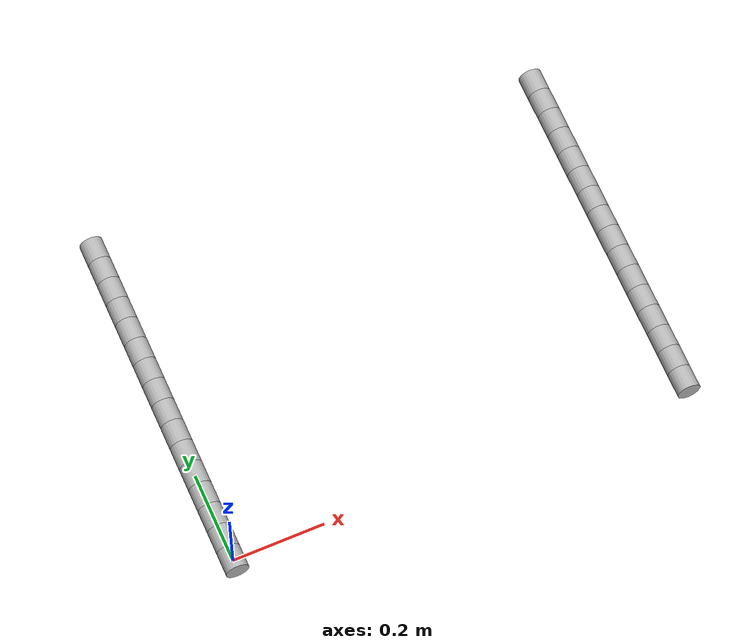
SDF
<sdf version="1.5">
 <world name="default">
  <include><uri>model://sun</uri></include>
  <model name="robot 2">
   <pose>1 0 0 1.57 -0 0</pose>
   <link name="base_link">
    <inertial>
     <pose>0 0 0.025 0 -0 0</pose>
     <mass>0.159</mass>
     <inertia>
      <ixx>5.7969e-05</ixx>
      <ixy>0</ixy>
      <ixz>0</ixz>
      <iyy>5.7969e-05</iyy>
      <iyz>0</iyz>
      <izz>4.9687e-05</izz>
     </inertia>
    </inertial>
    <collision name="base_link_collision">
     <geometry><cylinder><length>0.05</length><radius>0.025</radius></cylinder></geometry>
    </collision>
    <visual name="base_link_visual">
     <geometry><cylinder><length>0.05</length><radius>0.025</radius></cylinder></geometry>
    </visual>
   </link>
   <joint name="fixed" type="ball">
    <child>base_link</child>
    <parent>world</parent>
    <axis>
     <dynamics>
      <damping>0</damping>
      <friction>1</friction>
      <spring_reference>0</spring_reference>
      <spring_stiffness>0</spring_stiffness>
     </dynamics>
     <use_parent_model_frame>1</use_parent_model_frame>
     <xyz>0 0 1</xyz>
    </axis>
   </joint>
   <link name="link02">
    <pose>0 0 -0.025 0 -0 0</pose>
    <inertial>
     <pose>0 0 0.025 0 -0 0</pose>
     <mass>0.159</mass>
     <inertia>
      <ixx>5.7969e-05</ixx>
      <ixy>0</ixy>
      <ixz>0</ixz>
      <iyy>5.7969e-05</iyy>
      <iyz>0</iyz>
      <izz>4.9687e-05</izz>
     </inertia>
    </inertial>
    <collision name="link02_collision">
     <pose>0 0 -0.025 0 -0 0</pose>
     <geometry><cylinder><length>0.05</length><radius>0.025</radius></cylinder></geometry>
    </collision>
    <visual name="link02_visual">
     <pose>0 0 -0.025 0 -0 0</pose>
     <geometry><cylinder><length>0.05</length><radius>0.025</radius></cylinder></geometry>
    </visual>
   </link>
   <joint name="link0102" type="revolute">
    <child>link02</child>
    <parent>base_link</parent>
    <axis>
     <xyz>0 1 0</xyz>
     <limit><lower>-1.57075</lower><upper>1.57075</upper><effort>1000</effort><velocity>1</velocity></limit>
     <dynamics>
      <damping>0.5</damping>
      <friction>0.5</friction>
      <spring_reference>0</spring_reference>
      <spring_stiffness>5</spring_stiffness>
     </dynamics>
     <use_parent_model_frame>1</use_parent_model_frame>
    </axis>
   </joint>
   <link name="link03">
    <pose>0 0 -0.075 0 -0 0</pose>
    <inertial>
     <pose>0 0 0.025 0 -0 0</pose>
     <mass>0.159</mass>
     <inertia>
      <ixx>5.7969e-05</ixx>
      <ixy>0</ixy>
      <ixz>0</ixz>
      <iyy>5.7969e-05</iyy>
      <iyz>0</iyz>
      <izz>4.9687e-05</izz>
     </inertia>
    </inertial>
    <collision name="link03_collision">
     <pose>0 0 -0.025 0 -0 0</pose>
     <geometry><cylinder><length>0.05</length><radius>0.025</radius></cylinder></geometry>
    </collision>
    <visual name="link03_visual">
     <pose>0 0 -0.025 0 -0 0</pose>
     <geometry><cylinder><length>0.05</length><radius>0.025</radius></cylinder></geometry>
    </visual>
   </link>
   <joint name="link0203" type="revolute">
    <child>link03</child>
    <parent>link02</parent>
    <axis>
     <xyz>1 0 0</xyz>
     <limit><lower>-1.57075</lower><upper>1.57075</upper><effort>1000</effort><velocity>1</velocity></limit>
     <dynamics>
      <damping>0.5</damping>
      <friction>0.5</friction>
      <spring_reference>0</spring_reference>
      <spring_stiffness>5</spring_stiffness>
     </dynamics>
     <use_parent_model_frame>1</use_parent_model_frame>
    </axis>
   </joint>
   <link name="link04">
    <pose>0 0 -0.125 0 -0 0</pose>
    <inertial>
     <pose>0 0 0.025 0 -0 0</pose>
     <mass>0.159</mass>
     <inertia>
      <ixx>5.7969e-05</ixx>
      <ixy>0</ixy>
      <ixz>0</ixz>
      <iyy>5.7969e-05</iyy>
      <iyz>0</iyz>
      <izz>4.9687e-05</izz>
     </inertia>
    </inertial>
    <collision name="link04_collision">
     <pose>0 0 -0.025 0 -0 0</pose>
     <geometry><cylinder><length>0.05</length><radius>0.025</radius></cylinder></geometry>
    </collision>
    <visual name="link04_visual">
     <pose>0 0 -0.025 0 -0 0</pose>
     <geometry><cylinder><length>0.05</length><radius>0.025</radius></cylinder></geometry>
    </visual>
   </link>
   <joint name="link0304" type="revolute">
    <child>link04</child>
    <parent>link03</parent>
    <axis>
     <xyz>0 1 0</xyz>
     <limit><lower>-1.57075</lower><upper>1.57075</upper><effort>1000</effort><velocity>1</velocity></limit>
     <dynamics>
      <damping>0.5</damping>
      <friction>0.5</friction>
      <spring_reference>0</spring_reference>
      <spring_stiffness>5</spring_stiffness>
     </dynamics>
     <use_parent_model_frame>1</use_parent_model_frame>
    </axis>
   </joint>
   <link name="link05">
    <pose>0 0 -0.175 0 -0 0</pose>
    <inertial>
     <pose>0 0 0.025 0 -0 0</pose>
     <mass>0.159</mass>
     <inertia>
      <ixx>5.7969e-05</ixx>
      <ixy>0</ixy>
      <ixz>0</ixz>
      <iyy>5.7969e-05</iyy>
      <iyz>0</iyz>
      <izz>4.9687e-05</izz>
     </inertia>
    </inertial>
    <collision name="link05_collision">
     <pose>0 0 -0.025 0 -0 0</pose>
     <geometry><cylinder><length>0.05</length><radius>0.025</radius></cylinder></geometry>
    </collision>
    <visual name="link05_visual">
     <pose>0 0 -0.025 0 -0 0</pose>
     <geometry><cylinder><length>0.05</length><radius>0.025</radius></cylinder></geometry>
    </visual>
   </link>
   <joint name="link0405" type="revolute">
    <child>link05</child>
    <parent>link04</parent>
    <axis>
     <xyz>1 0 0</xyz>
     <limit><lower>-1.57075</lower><upper>1.57075</upper><effort>1000</effort><velocity>1</velocity></limit>
     <dynamics>
      <damping>0.5</damping>
      <friction>0.5</friction>
      <spring_reference>0</spring_reference>
      <spring_stiffness>5</spring_stiffness>
     </dynamics>
     <use_parent_model_frame>1</use_parent_model_frame>
    </axis>
   </joint>
   <link name="link06">
    <pose>0 0 -0.225 0 -0 0</pose>
    <inertial>
     <pose>0 0 0.025 0 -0 0</pose>
     <mass>0.159</mass>
     <inertia>
      <ixx>5.7969e-05</ixx>
      <ixy>0</ixy>
      <ixz>0</ixz>
      <iyy>5.7969e-05</iyy>
      <iyz>0</iyz>
      <izz>4.9687e-05</izz>
     </inertia>
    </inertial>
    <collision name="link06_collision">
     <pose>0 0 -0.025 0 -0 0</pose>
     <geometry><cylinder><length>0.05</length><radius>0.025</radius></cylinder></geometry>
    </collision>
    <visual name="link06_visual">
     <pose>0 0 -0.025 0 -0 0</pose>
     <geometry><cylinder><length>0.05</length><radius>0.025</radius></cylinder></geometry>
    </visual>
   </link>
   <joint name="link0506" type="revolute">
    <child>link06</child>
    <parent>link05</parent>
    <axis>
     <xyz>0 1 0</xyz>
     <limit><lower>-1.57075</lower><upper>1.57075</upper><effort>1000</effort><velocity>1</velocity></limit>
     <dynamics>
      <damping>0.5</damping>
      <friction>0.5</friction>
      <spring_reference>0</spring_reference>
      <spring_stiffness>5</spring_stiffness>
     </dynamics>
     <use_parent_model_frame>1</use_parent_model_frame>
    </axis>
   </joint>
   <link name="link07">
    <pose>0 0 -0.275 0 -0 0</pose>
    <inertial>
     <pose>0 0 0.025 0 -0 0</pose>
     <mass>0.159</mass>
     <inertia>
      <ixx>5.7969e-05</ixx>
      <ixy>0</ixy>
      <ixz>0</ixz>
      <iyy>5.7969e-05</iyy>
      <iyz>0</iyz>
      <izz>4.9687e-05</izz>
     </inertia>
    </inertial>
    <collision name="link07_collision">
     <pose>0 0 -0.025 0 -0 0</pose>
     <geometry><cylinder><length>0.05</length><radius>0.025</radius></cylinder></geometry>
    </collision>
    <visual name="link07_visual">
     <pose>0 0 -0.025 0 -0 0</pose>
     <geometry><cylinder><length>0.05</length><radius>0.025</radius></cylinder></geometry>
    </visual>
   </link>
   <joint name="link0607" type="revolute">
    <child>link07</child>
    <parent>link06</parent>
    <axis>
     <xyz>1 0 0</xyz>
     <limit><lower>-1.57075</lower><upper>1.57075</upper><effort>1000</effort><velocity>1</velocity></limit>
     <dynamics>
      <damping>0.5</damping>
      <friction>0.5</friction>
      <spring_reference>0</spring_reference>
      <spring_stiffness>5</spring_stiffness>
     </dynamics>
     <use_parent_model_frame>1</use_parent_model_frame>
    </axis>
   </joint>
   <link name="link08">
    <pose>0 0 -0.325 0 -0 0</pose>
    <inertial>
     <pose>0 0 0.025 0 -0 0</pose>
     <mass>0.159</mass>
     <inertia>
      <ixx>5.7969e-05</ixx>
      <ixy>0</ixy>
      <ixz>0</ixz>
      <iyy>5.7969e-05</iyy>
      <iyz>0</iyz>
      <izz>4.9687e-05</izz>
     </inertia>
    </inertial>
    <collision name="link08_collision">
     <pose>0 0 -0.025 0 -0 0</pose>
     <geometry><cylinder><length>0.05</length><radius>0.025</radius></cylinder></geometry>
    </collision>
    <visual name="link08_visual">
     <pose>0 0 -0.025 0 -0 0</pose>
     <geometry><cylinder><length>0.05</length><radius>0.025</radius></cylinder></geometry>
    </visual>
   </link>
   <joint name="link0708" type="revolute">
    <child>link08</child>
    <parent>link07</parent>
    <axis>
     <xyz>0 1 0</xyz>
     <limit><lower>-1.57075</lower><upper>1.57075</upper><effort>1000</effort><velocity>1</velocity></limit>
     <dynamics>
      <damping>0.5</damping>
      <friction>0.5</friction>
      <spring_reference>0</spring_reference>
      <spring_stiffness>5</spring_stiffness>
     </dynamics>
     <use_parent_model_frame>1</use_parent_model_frame>
    </axis>
   </joint>
   <link name="link09">
    <pose>0 0 -0.375 0 -0 0</pose>
    <inertial>
     <pose>0 0 0.025 0 -0 0</pose>
     <mass>0.159</mass>
     <inertia>
      <ixx>5.7969e-05</ixx>
      <ixy>0</ixy>
      <ixz>0</ixz>
      <iyy>5.7969e-05</iyy>
      <iyz>0</iyz>
      <izz>4.9687e-05</izz>
     </inertia>
    </inertial>
    <collision name="link09_collision">
     <pose>0 0 -0.025 0 -0 0</pose>
     <geometry><cylinder><length>0.05</length><radius>0.025</radius></cylinder></geometry>
    </collision>
    <visual name="link09_visual">
     <pose>0 0 -0.025 0 -0 0</pose>
     <geometry><cylinder><length>0.05</length><radius>0.025</radius></cylinder></geometry>
    </visual>
   </link>
   <joint name="link0809" type="revolute">
    <child>link09</child>
    <parent>link08</parent>
    <axis>
     <xyz>1 0 0</xyz>
     <limit><lower>-1.57075</lower><upper>1.57075</upper><effort>1000</effort><velocity>1</velocity></limit>
     <dynamics>
      <damping>0.5</damping>
      <friction>0.5</friction>
      <spring_reference>0</spring_reference>
      <spring_stiffness>5</spring_stiffness>
     </dynamics>
     <use_parent_model_frame>1</use_parent_model_frame>
    </axis>
   </joint>
   <link name="link10">
    <pose>0 0 -0.425 0 -0 0</pose>
    <inertial>
     <pose>0 0 0.025 0 -0 0</pose>
     <mass>0.159</mass>
     <inertia>
      <ixx>5.7969e-05</ixx>
      <ixy>0</ixy>
      <ixz>0</ixz>
      <iyy>5.7969e-05</iyy>
      <iyz>0</iyz>
      <izz>4.9687e-05</izz>
     </inertia>
    </inertial>
    <collision name="link10_collision">
     <pose>0 0 -0.025 0 -0 0</pose>
     <geometry><cylinder><length>0.05</length><radius>0.025</radius></cylinder></geometry>
    </collision>
    <visual name="link10_visual">
     <pose>0 0 -0.025 0 -0 0</pose>
     <geometry><cylinder><length>0.05</length><radius>0.025</radius></cylinder></geometry>
    </visual>
   </link>
   <joint name="link0910" type="revolute">
    <child>link10</child>
    <parent>link09</parent>
    <axis>
     <xyz>0 1 0</xyz>
     <limit><lower>-1.57075</lower><upper>1.57075</upper><effort>1000</effort><velocity>1</velocity></limit>
     <dynamics>
      <damping>0.5</damping>
      <friction>0.5</friction>
      <spring_reference>0</spring_reference>
      <spring_stiffness>5</spring_stiffness>
     </dynamics>
     <use_parent_model_frame>1</use_parent_model_frame>
    </axis>
   </joint>
   <link name="link11">
    <pose>0 0 -0.475 0 -0 0</pose>
    <inertial>
     <pose>0 0 0.025 0 -0 0</pose>
     <mass>0.159</mass>
     <inertia>
      <ixx>5.7969e-05</ixx>
      <ixy>0</ixy>
      <ixz>0</ixz>
      <iyy>5.7969e-05</iyy>
      <iyz>0</iyz>
      <izz>4.9687e-05</izz>
     </inertia>
    </inertial>
    <collision name="link11_collision">
     <pose>0 0 -0.025 0 -0 0</pose>
     <geometry><cylinder><length>0.05</length><radius>0.025</radius></cylinder></geometry>
    </collision>
    <visual name="link11_visual">
     <pose>0 0 -0.025 0 -0 0</pose>
     <geometry><cylinder><length>0.05</length><radius>0.025</radius></cylinder></geometry>
    </visual>
   </link>
   <joint name="link1011" type="revolute">
    <child>link11</child>
    <parent>link10</parent>
    <axis>
     <xyz>1 0 0</xyz>
     <limit><lower>-1.57075</lower><upper>1.57075</upper><effort>1000</effort><velocity>1</velocity></limit>
     <dynamics>
      <damping>0.5</damping>
      <friction>0.5</friction>
      <spring_reference>0</spring_reference>
      <spring_stiffness>5</spring_stiffness>
     </dynamics>
     <use_parent_model_frame>1</use_parent_model_frame>
    </axis>
   </joint>
   <link name="link12">
    <pose>0 0 -0.525 0 -0 0</pose>
    <inertial>
     <pose>0 0 0.025 0 -0 0</pose>
     <mass>0.159</mass>
     <inertia>
      <ixx>5.7969e-05</ixx>
      <ixy>0</ixy>
      <ixz>0</ixz>
      <iyy>5.7969e-05</iyy>
      <iyz>0</iyz>
      <izz>4.9687e-05</izz>
     </inertia>
    </inertial>
    <collision name="link12_collision">
     <pose>0 0 -0.025 0 -0 0</pose>
     <geometry><cylinder><length>0.05</length><radius>0.025</radius></cylinder></geometry>
    </collision>
    <visual name="link12_visual">
     <pose>0 0 -0.025 0 -0 0</pose>
     <geometry><cylinder><length>0.05</length><radius>0.025</radius></cylinder></geometry>
    </visual>
   </link>
   <joint name="link1112" type="revolute">
    <child>link12</child>
    <parent>link11</parent>
    <axis>
     <xyz>0 1 0</xyz>
     <limit><lower>-1.57075</lower><upper>1.57075</upper><effort>1000</effort><velocity>1</velocity></limit>
     <dynamics>
      <damping>0.5</damping>
      <friction>0.5</friction>
      <spring_reference>0</spring_reference>
      <spring_stiffness>5</spring_stiffness>
     </dynamics>
     <use_parent_model_frame>1</use_parent_model_frame>
    </axis>
   </joint>
   <link name="link13">
    <pose>0 0 -0.575 0 -0 0</pose>
    <inertial>
     <pose>0 0 0.025 0 -0 0</pose>
     <mass>0.159</mass>
     <inertia>
      <ixx>5.7969e-05</ixx>
      <ixy>0</ixy>
      <ixz>0</ixz>
      <iyy>5.7969e-05</iyy>
      <iyz>0</iyz>
      <izz>4.9687e-05</izz>
     </inertia>
    </inertial>
    <collision name="link13_collision">
     <pose>0 0 -0.025 0 -0 0</pose>
     <geometry><cylinder><length>0.05</length><radius>0.025</radius></cylinder></geometry>
    </collision>
    <visual name="link13_visual">
     <pose>0 0 -0.025 0 -0 0</pose>
     <geometry><cylinder><length>0.05</length><radius>0.025</radius></cylinder></geometry>
    </visual>
   </link>
   <joint name="link1213" type="revolute">
    <child>link13</child>
    <parent>link12</parent>
    <axis>
     <xyz>1 0 0</xyz>
     <limit><lower>-1.57075</lower><upper>1.57075</upper><effort>1000</effort><velocity>1</velocity></limit>
     <dynamics>
      <damping>0.5</damping>
      <friction>0.5</friction>
      <spring_reference>0</spring_reference>
      <spring_stiffness>5</spring_stiffness>
     </dynamics>
     <use_parent_model_frame>1</use_parent_model_frame>
    </axis>
   </joint>
   <link name="link14">
    <pose>0 0 -0.625 0 -0 0</pose>
    <inertial>
     <pose>0 0 0.025 0 -0 0</pose>
     <mass>0.159</mass>
     <inertia>
      <ixx>5.7969e-05</ixx>
      <ixy>0</ixy>
      <ixz>0</ixz>
      <iyy>5.7969e-05</iyy>
      <iyz>0</iyz>
      <izz>4.9687e-05</izz>
     </inertia>
    </inertial>
    <collision name="link14_collision">
     <pose>0 0 -0.025 0 -0 0</pose>
     <geometry><cylinder><length>0.05</length><radius>0.025</radius></cylinder></geometry>
    </collision>
    <visual name="link14_visual">
     <pose>0 0 -0.025 0 -0 0</pose>
     <geometry><cylinder><length>0.05</length><radius>0.025</radius></cylinder></geometry>
    </visual>
   </link>
   <joint name="link1314" type="revolute">
    <child>link14</child>
    <parent>link13</parent>
    <axis>
     <xyz>0 1 0</xyz>
     <limit><lower>-1.57075</lower><upper>1.57075</upper><effort>1000</effort><velocity>1</velocity></limit>
     <dynamics>
      <damping>0.5</damping>
      <friction>0.5</friction>
      <spring_reference>0</spring_reference>
      <spring_stiffness>5</spring_stiffness>
     </dynamics>
     <use_parent_model_frame>1</use_parent_model_frame>
    </axis>
   </joint>
   <link name="link15">
    <pose>0 0 -0.675 0 -0 0</pose>
    <inertial>
     <pose>0 0 0.025 0 -0 0</pose>
     <mass>0.159</mass>
     <inertia>
      <ixx>5.7969e-05</ixx>
      <ixy>0</ixy>
      <ixz>0</ixz>
      <iyy>5.7969e-05</iyy>
      <iyz>0</iyz>
      <izz>4.9687e-05</izz>
     </inertia>
    </inertial>
    <collision name="link15_collision">
     <pose>0 0 -0.025 0 -0 0</pose>
     <geometry><cylinder><length>0.05</length><radius>0.025</radius></cylinder></geometry>
    </collision>
    <visual name="link15_visual">
     <pose>0 0 -0.025 0 -0 0</pose>
     <geometry><cylinder><length>0.05</length><radius>0.025</radius></cylinder></geometry>
    </visual>
   </link>
   <joint name="link1415" type="revolute">
    <child>link15</child>
    <parent>link14</parent>
    <axis>
     <xyz>1 0 0</xyz>
     <limit><lower>-1.57075</lower><upper>1.57075</upper><effort>1000</effort><velocity>1</velocity></limit>
     <dynamics>
      <damping>0.5</damping>
      <friction>0.5</friction>
      <spring_reference>0</spring_reference>
      <spring_stiffness>5</spring_stiffness>
     </dynamics>
     <use_parent_model_frame>1</use_parent_model_frame>
    </axis>
   </joint>
   <link name="link16">
    <pose>0 0 -0.725 0 -0 0</pose>
    <inertial>
     <pose>0 0 0.025 0 -0 0</pose>
     <mass>0.159</mass>
     <inertia>
      <ixx>5.7969e-05</ixx>
      <ixy>0</ixy>
      <ixz>0</ixz>
      <iyy>5.7969e-05</iyy>
      <iyz>0</iyz>
      <izz>4.9687e-05</izz>
     </inertia>
    </inertial>
    <collision name="link16_collision">
     <pose>0 0 -0.025 0 -0 0</pose>
     <geometry><cylinder><length>0.05</length><radius>0.025</radius></cylinder></geometry>
    </collision>
    <visual name="link16_visual">
     <pose>0 0 -0.025 0 -0 0</pose>
     <geometry><cylinder><length>0.05</length><radius>0.025</radius></cylinder></geometry>
    </visual>
   </link>
   <joint name="link1516" type="revolute">
    <child>link16</child>
    <parent>link15</parent>
    <axis>
     <xyz>0 1 0</xyz>
     <limit><lower>-1.57075</lower><upper>1.57075</upper><effort>1000</effort><velocity>1</velocity></limit>
     <dynamics>
      <damping>0.5</damping>
      <friction>0.5</friction>
      <spring_reference>0</spring_reference>
      <spring_stiffness>5</spring_stiffness>
     </dynamics>
     <use_parent_model_frame>1</use_parent_model_frame>
    </axis>
   </joint>
  </model>
  <model name="robot">
   <pose>0 0 0 1.57 -0 0</pose>
   <link name="base_link">
    <inertial>
     <pose>0 0 0.025 0 -0 0</pose>
     <mass>0.159</mass>
     <inertia>
      <ixx>5.7969e-05</ixx>
      <ixy>0</ixy>
      <ixz>0</ixz>
      <iyy>5.7969e-05</iyy>
      <iyz>0</iyz>
      <izz>4.9687e-05</izz>
     </inertia>
    </inertial>
    <collision name="base_link_collision">
     <geometry><cylinder><length>0.05</length><radius>0.025</radius></cylinder></geometry>
    </collision>
    <visual name="base_link_visual">
     <geometry><cylinder><length>0.05</length><radius>0.025</radius></cylinder></geometry>
    </visual>
   </link>
   <joint name="fixed" type="ball">
    <child>base_link</child>
    <parent>world</parent>
    <axis>
     <dynamics>
      <damping>0</damping>
      <friction>0</friction>
      <spring_reference>0</spring_reference>
      <spring_stiffness>0</spring_stiffness>
     </dynamics>
     <use_parent_model_frame>1</use_parent_model_frame>
     <xyz>0 0 1</xyz>
    </axis>
   </joint>
   <link name="link02">
    <pose>0 0 -0.025 0 -0 0</pose>
    <inertial>
     <pose>0 0 0.025 0 -0 0</pose>
     <mass>0.159</mass>
     <inertia>
      <ixx>5.7969e-05</ixx>
      <ixy>0</ixy>
      <ixz>0</ixz>
      <iyy>5.7969e-05</iyy>
      <iyz>0</iyz>
      <izz>4.9687e-05</izz>
     </inertia>
    </inertial>
    <collision name="link02_collision">
     <pose>0 0 -0.025 0 -0 0</pose>
     <geometry><cylinder><length>0.05</length><radius>0.025</radius></cylinder></geometry>
    </collision>
    <visual name="link02_visual">
     <pose>0 0 -0.025 0 -0 0</pose>
     <geometry><cylinder><length>0.05</length><radius>0.025</radius></cylinder></geometry>
    </visual>
   </link>
   <joint name="link0102" type="revolute">
    <child>link02</child>
    <parent>base_link</parent>
    <axis>
     <xyz>0 1 0</xyz>
     <limit><lower>-1.57075</lower><upper>1.57075</upper><effort>1000</effort><velocity>1</velocity></limit>
     <dynamics><spring_reference>0</spring_reference><spring_stiffness>0</spring_stiffness></dynamics>
     <use_parent_model_frame>1</use_parent_model_frame>
    </axis>
   </joint>
   <link name="link03">
    <pose>0 0 -0.075 0 -0 0</pose>
    <inertial>
     <pose>0 0 0.025 0 -0 0</pose>
     <mass>0.159</mass>
     <inertia>
      <ixx>5.7969e-05</ixx>
      <ixy>0</ixy>
      <ixz>0</ixz>
      <iyy>5.7969e-05</iyy>
      <iyz>0</iyz>
      <izz>4.9687e-05</izz>
     </inertia>
    </inertial>
    <collision name="link03_collision">
     <pose>0 0 -0.025 0 -0 0</pose>
     <geometry><cylinder><length>0.05</length><radius>0.025</radius></cylinder></geometry>
    </collision>
    <visual name="link03_visual">
     <pose>0 0 -0.025 0 -0 0</pose>
     <geometry><cylinder><length>0.05</length><radius>0.025</radius></cylinder></geometry>
    </visual>
   </link>
   <joint name="link0203" type="revolute">
    <child>link03</child>
    <parent>link02</parent>
    <axis>
     <xyz>1 0 0</xyz>
     <limit><lower>-1.57075</lower><upper>1.57075</upper><effort>1000</effort><velocity>1</velocity></limit>
     <dynamics><spring_reference>0</spring_reference><spring_stiffness>0</spring_stiffness></dynamics>
     <use_parent_model_frame>1</use_parent_model_frame>
    </axis>
   </joint>
   <link name="link04">
    <pose>0 0 -0.125 0 -0 0</pose>
    <inertial>
     <pose>0 0 0.025 0 -0 0</pose>
     <mass>0.159</mass>
     <inertia>
      <ixx>5.7969e-05</ixx>
      <ixy>0</ixy>
      <ixz>0</ixz>
      <iyy>5.7969e-05</iyy>
      <iyz>0</iyz>
      <izz>4.9687e-05</izz>
     </inertia>
    </inertial>
    <collision name="link04_collision">
     <pose>0 0 -0.025 0 -0 0</pose>
     <geometry><cylinder><length>0.05</length><radius>0.025</radius></cylinder></geometry>
    </collision>
    <visual name="link04_visual">
     <pose>0 0 -0.025 0 -0 0</pose>
     <geometry><cylinder><length>0.05</length><radius>0.025</radius></cylinder></geometry>
    </visual>
   </link>
   <joint name="link0304" type="revolute">
    <child>link04</child>
    <parent>link03</parent>
    <axis>
     <xyz>0 1 0</xyz>
     <limit><lower>-1.57075</lower><upper>1.57075</upper><effort>1000</effort><velocity>1</velocity></limit>
     <dynamics><spring_reference>0</spring_reference><spring_stiffness>0</spring_stiffness></dynamics>
     <use_parent_model_frame>1</use_parent_model_frame>
    </axis>
   </joint>
   <link name="link05">
    <pose>0 0 -0.175 0 -0 0</pose>
    <inertial>
     <pose>0 0 0.025 0 -0 0</pose>
     <mass>0.159</mass>
     <inertia>
      <ixx>5.7969e-05</ixx>
      <ixy>0</ixy>
      <ixz>0</ixz>
      <iyy>5.7969e-05</iyy>
      <iyz>0</iyz>
      <izz>4.9687e-05</izz>
     </inertia>
    </inertial>
    <collision name="link05_collision">
     <pose>0 0 -0.025 0 -0 0</pose>
     <geometry><cylinder><length>0.05</length><radius>0.025</radius></cylinder></geometry>
    </collision>
    <visual name="link05_visual">
     <pose>0 0 -0.025 0 -0 0</pose>
     <geometry><cylinder><length>0.05</length><radius>0.025</radius></cylinder></geometry>
    </visual>
   </link>
   <joint name="link0405" type="revolute">
    <child>link05</child>
    <parent>link04</parent>
    <axis>
     <xyz>1 0 0</xyz>
     <limit><lower>-1.57075</lower><upper>1.57075</upper><effort>1000</effort><velocity>1</velocity></limit>
     <dynamics><spring_reference>0</spring_reference><spring_stiffness>0</spring_stiffness></dynamics>
     <use_parent_model_frame>1</use_parent_model_frame>
    </axis>
   </joint>
   <link name="link06">
    <pose>0 0 -0.225 0 -0 0</pose>
    <inertial>
     <pose>0 0 0.025 0 -0 0</pose>
     <mass>0.159</mass>
     <inertia>
      <ixx>5.7969e-05</ixx>
      <ixy>0</ixy>
      <ixz>0</ixz>
      <iyy>5.7969e-05</iyy>
      <iyz>0</iyz>
      <izz>4.9687e-05</izz>
     </inertia>
    </inertial>
    <collision name="link06_collision">
     <pose>0 0 -0.025 0 -0 0</pose>
     <geometry><cylinder><length>0.05</length><radius>0.025</radius></cylinder></geometry>
    </collision>
    <visual name="link06_visual">
     <pose>0 0 -0.025 0 -0 0</pose>
     <geometry><cylinder><length>0.05</length><radius>0.025</radius></cylinder></geometry>
    </visual>
   </link>
   <joint name="link0506" type="revolute">
    <child>link06</child>
    <parent>link05</parent>
    <axis>
     <xyz>0 1 0</xyz>
     <limit><lower>-1.57075</lower><upper>1.57075</upper><effort>1000</effort><velocity>1</velocity></limit>
     <dynamics><spring_reference>0</spring_reference><spring_stiffness>0</spring_stiffness></dynamics>
     <use_parent_model_frame>1</use_parent_model_frame>
    </axis>
   </joint>
   <link name="link07">
    <pose>0 0 -0.275 0 -0 0</pose>
    <inertial>
     <pose>0 0 0.025 0 -0 0</pose>
     <mass>0.159</mass>
     <inertia>
      <ixx>5.7969e-05</ixx>
      <ixy>0</ixy>
      <ixz>0</ixz>
      <iyy>5.7969e-05</iyy>
      <iyz>0</iyz>
      <izz>4.9687e-05</izz>
     </inertia>
    </inertial>
    <collision name="link07_collision">
     <pose>0 0 -0.025 0 -0 0</pose>
     <geometry><cylinder><length>0.05</length><radius>0.025</radius></cylinder></geometry>
    </collision>
    <visual name="link07_visual">
     <pose>0 0 -0.025 0 -0 0</pose>
     <geometry><cylinder><length>0.05</length><radius>0.025</radius></cylinder></geometry>
    </visual>
   </link>
   <joint name="link0607" type="revolute">
    <child>link07</child>
    <parent>link06</parent>
    <axis>
     <xyz>1 0 0</xyz>
     <limit><lower>-1.57075</lower><upper>1.57075</upper><effort>1000</effort><velocity>1</velocity></limit>
     <dynamics><spring_reference>0</spring_reference><spring_stiffness>0</spring_stiffness></dynamics>
     <use_parent_model_frame>1</use_parent_model_frame>
    </axis>
   </joint>
   <link name="link08">
    <pose>0 0 -0.325 0 -0 0</pose>
    <inertial>
     <pose>0 0 0.025 0 -0 0</pose>
     <mass>0.159</mass>
     <inertia>
      <ixx>5.7969e-05</ixx>
      <ixy>0</ixy>
      <ixz>0</ixz>
      <iyy>5.7969e-05</iyy>
      <iyz>0</iyz>
      <izz>4.9687e-05</izz>
     </inertia>
    </inertial>
    <collision name="link08_collision">
     <pose>0 0 -0.025 0 -0 0</pose>
     <geometry><cylinder><length>0.05</length><radius>0.025</radius></cylinder></geometry>
    </collision>
    <visual name="link08_visual">
     <pose>0 0 -0.025 0 -0 0</pose>
     <geometry><cylinder><length>0.05</length><radius>0.025</radius></cylinder></geometry>
    </visual>
   </link>
   <joint name="link0708" type="revolute">
    <child>link08</child>
    <parent>link07</parent>
    <axis>
     <xyz>0 1 0</xyz>
     <limit><lower>-1.57075</lower><upper>1.57075</upper><effort>1000</effort><velocity>1</velocity></limit>
     <dynamics><spring_reference>0</spring_reference><spring_stiffness>0</spring_stiffness></dynamics>
     <use_parent_model_frame>1</use_parent_model_frame>
    </axis>
   </joint>
   <link name="link09">
    <pose>0 0 -0.375 0 -0 0</pose>
    <inertial>
     <pose>0 0 0.025 0 -0 0</pose>
     <mass>0.159</mass>
     <inertia>
      <ixx>5.7969e-05</ixx>
      <ixy>0</ixy>
      <ixz>0</ixz>
      <iyy>5.7969e-05</iyy>
      <iyz>0</iyz>
      <izz>4.9687e-05</izz>
     </inertia>
    </inertial>
    <collision name="link09_collision">
     <pose>0 0 -0.025 0 -0 0</pose>
     <geometry><cylinder><length>0.05</length><radius>0.025</radius></cylinder></geometry>
    </collision>
    <visual name="link09_visual">
     <pose>0 0 -0.025 0 -0 0</pose>
     <geometry><cylinder><length>0.05</length><radius>0.025</radius></cylinder></geometry>
    </visual>
   </link>
   <joint name="link0809" type="revolute">
    <child>link09</child>
    <parent>link08</parent>
    <axis>
     <xyz>1 0 0</xyz>
     <limit><lower>-1.57075</lower><upper>1.57075</upper><effort>1000</effort><velocity>1</velocity></limit>
     <dynamics><spring_reference>0</spring_reference><spring_stiffness>0</spring_stiffness></dynamics>
     <use_parent_model_frame>1</use_parent_model_frame>
    </axis>
   </joint>
   <link name="link10">
    <pose>0 0 -0.425 0 -0 0</pose>
    <inertial>
     <pose>0 0 0.025 0 -0 0</pose>
     <mass>0.159</mass>
     <inertia>
      <ixx>5.7969e-05</ixx>
      <ixy>0</ixy>
      <ixz>0</ixz>
      <iyy>5.7969e-05</iyy>
      <iyz>0</iyz>
      <izz>4.9687e-05</izz>
     </inertia>
    </inertial>
    <collision name="link10_collision">
     <pose>0 0 -0.025 0 -0 0</pose>
     <geometry><cylinder><length>0.05</length><radius>0.025</radius></cylinder></geometry>
    </collision>
    <visual name="link10_visual">
     <pose>0 0 -0.025 0 -0 0</pose>
     <geometry><cylinder><length>0.05</length><radius>0.025</radius></cylinder></geometry>
    </visual>
   </link>
   <joint name="link0910" type="revolute">
    <child>link10</child>
    <parent>link09</parent>
    <axis>
     <xyz>0 1 0</xyz>
     <limit><lower>-1.57075</lower><upper>1.57075</upper><effort>1000</effort><velocity>1</velocity></limit>
     <dynamics><spring_reference>0</spring_reference><spring_stiffness>0</spring_stiffness></dynamics>
     <use_parent_model_frame>1</use_parent_model_frame>
    </axis>
   </joint>
   <link name="link11">
    <pose>0 0 -0.475 0 -0 0</pose>
    <inertial>
     <pose>0 0 0.025 0 -0 0</pose>
     <mass>0.159</mass>
     <inertia>
      <ixx>5.7969e-05</ixx>
      <ixy>0</ixy>
      <ixz>0</ixz>
      <iyy>5.7969e-05</iyy>
      <iyz>0</iyz>
      <izz>4.9687e-05</izz>
     </inertia>
    </inertial>
    <collision name="link11_collision">
     <pose>0 0 -0.025 0 -0 0</pose>
     <geometry><cylinder><length>0.05</length><radius>0.025</radius></cylinder></geometry>
    </collision>
    <visual name="link11_visual">
     <pose>0 0 -0.025 0 -0 0</pose>
     <geometry><cylinder><length>0.05</length><radius>0.025</radius></cylinder></geometry>
    </visual>
   </link>
   <joint name="link1011" type="revolute">
    <child>link11</child>
    <parent>link10</parent>
    <axis>
     <xyz>1 0 0</xyz>
     <limit><lower>-1.57075</lower><upper>1.57075</upper><effort>1000</effort><velocity>1</velocity></limit>
     <dynamics><spring_reference>0</spring_reference><spring_stiffness>0</spring_stiffness></dynamics>
     <use_parent_model_frame>1</use_parent_model_frame>
    </axis>
   </joint>
   <link name="link12">
    <pose>0 0 -0.525 0 -0 0</pose>
    <inertial>
     <pose>0 0 0.025 0 -0 0</pose>
     <mass>0.159</mass>
     <inertia>
      <ixx>5.7969e-05</ixx>
      <ixy>0</ixy>
      <ixz>0</ixz>
      <iyy>5.7969e-05</iyy>
      <iyz>0</iyz>
      <izz>4.9687e-05</izz>
     </inertia>
    </inertial>
    <collision name="link12_collision">
     <pose>0 0 -0.025 0 -0 0</pose>
     <geometry><cylinder><length>0.05</length><radius>0.025</radius></cylinder></geometry>
    </collision>
    <visual name="link12_visual">
     <pose>0 0 -0.025 0 -0 0</pose>
     <geometry><cylinder><length>0.05</length><radius>0.025</radius></cylinder></geometry>
    </visual>
   </link>
   <joint name="link1112" type="revolute">
    <child>link12</child>
    <parent>link11</parent>
    <axis>
     <xyz>0 1 0</xyz>
     <limit><lower>-1.57075</lower><upper>1.57075</upper><effort>1000</effort><velocity>1</velocity></limit>
     <dynamics><spring_reference>0</spring_reference><spring_stiffness>0</spring_stiffness></dynamics>
     <use_parent_model_frame>1</use_parent_model_frame>
    </axis>
   </joint>
   <link name="link13">
    <pose>0 0 -0.575 0 -0 0</pose>
    <inertial>
     <pose>0 0 0.025 0 -0 0</pose>
     <mass>0.159</mass>
     <inertia>
      <ixx>5.7969e-05</ixx>
      <ixy>0</ixy>
      <ixz>0</ixz>
      <iyy>5.7969e-05</iyy>
      <iyz>0</iyz>
      <izz>4.9687e-05</izz>
     </inertia>
    </inertial>
    <collision name="link13_collision">
     <pose>0 0 -0.025 0 -0 0</pose>
     <geometry><cylinder><length>0.05</length><radius>0.025</radius></cylinder></geometry>
    </collision>
    <visual name="link13_visual">
     <pose>0 0 -0.025 0 -0 0</pose>
     <geometry><cylinder><length>0.05</length><radius>0.025</radius></cylinder></geometry>
    </visual>
   </link>
   <joint name="link1213" type="revolute">
    <child>link13</child>
    <parent>link12</parent>
    <axis>
     <xyz>1 0 0</xyz>
     <limit><lower>-1.57075</lower><upper>1.57075</upper><effort>1000</effort><velocity>1</velocity></limit>
     <dynamics><spring_reference>0</spring_reference><spring_stiffness>0</spring_stiffness></dynamics>
     <use_parent_model_frame>1</use_parent_model_frame>
    </axis>
   </joint>
   <link name="link14">
    <pose>0 0 -0.625 0 -0 0</pose>
    <inertial>
     <pose>0 0 0.025 0 -0 0</pose>
     <mass>0.159</mass>
     <inertia>
      <ixx>5.7969e-05</ixx>
      <ixy>0</ixy>
      <ixz>0</ixz>
      <iyy>5.7969e-05</iyy>
      <iyz>0</iyz>
      <izz>4.9687e-05</izz>
     </inertia>
    </inertial>
    <collision name="link14_collision">
     <pose>0 0 -0.025 0 -0 0</pose>
     <geometry><cylinder><length>0.05</length><radius>0.025</radius></cylinder></geometry>
    </collision>
    <visual name="link14_visual">
     <pose>0 0 -0.025 0 -0 0</pose>
     <geometry><cylinder><length>0.05</length><radius>0.025</radius></cylinder></geometry>
    </visual>
   </link>
   <joint name="link1314" type="revolute">
    <child>link14</child>
    <parent>link13</parent>
    <axis>
     <xyz>0 1 0</xyz>
     <limit><lower>-1.57075</lower><upper>1.57075</upper><effort>1000</effort><velocity>1</velocity></limit>
     <dynamics><spring_reference>0</spring_reference><spring_stiffness>0</spring_stiffness></dynamics>
     <use_parent_model_frame>1</use_parent_model_frame>
    </axis>
   </joint>
   <link name="link15">
    <pose>0 0 -0.675 0 -0 0</pose>
    <inertial>
     <pose>0 0 0.025 0 -0 0</pose>
     <mass>0.159</mass>
     <inertia>
      <ixx>5.7969e-05</ixx>
      <ixy>0</ixy>
      <ixz>0</ixz>
      <iyy>5.7969e-05</iyy>
      <iyz>0</iyz>
      <izz>4.9687e-05</izz>
     </inertia>
    </inertial>
    <collision name="link15_collision">
     <pose>0 0 -0.025 0 -0 0</pose>
     <geometry><cylinder><length>0.05</length><radius>0.025</radius></cylinder></geometry>
    </collision>
    <visual name="link15_visual">
     <pose>0 0 -0.025 0 -0 0</pose>
     <geometry><cylinder><length>0.05</length><radius>0.025</radius></cylinder></geometry>
    </visual>
   </link>
   <joint name="link1415" type="revolute">
    <child>link15</child>
    <parent>link14</parent>
    <axis>
     <xyz>1 0 0</xyz>
     <limit><lower>-1.57075</lower><upper>1.57075</upper><effort>1000</effort><velocity>1</velocity></limit>
     <dynamics><spring_reference>0</spring_reference><spring_stiffness>0</spring_stiffness></dynamics>
     <use_parent_model_frame>1</use_parent_model_frame>
    </axis>
   </joint>
   <link name="link16">
    <pose>0 0 -0.725 0 -0 0</pose>
    <inertial>
     <pose>0 0 0.025 0 -0 0</pose>
     <mass>0.159</mass>
     <inertia>
      <ixx>5.7969e-05</ixx>
      <ixy>0</ixy>
      <ixz>0</ixz>
      <iyy>5.7969e-05</iyy>
      <iyz>0</iyz>
      <izz>4.9687e-05</izz>
     </inertia>
    </inertial>
    <collision name="link16_collision">
     <pose>0 0 -0.025 0 -0 0</pose>
     <geometry><cylinder><length>0.05</length><radius>0.025</radius></cylinder></geometry>
    </collision>
    <visual name="link16_visual">
     <pose>0 0 -0.025 0 -0 0</pose>
     <geometry><cylinder><length>0.05</length><radius>0.025</radius></cylinder></geometry>
    </visual>
   </link>
   <joint name="link1516" type="revolute">
    <child>link16</child>
    <parent>link15</parent>
    <axis>
     <xyz>0 1 0</xyz>
     <limit><lower>-1.57075</lower><upper>1.57075</upper><effort>1000</effort><velocity>1</velocity></limit>
     <dynamics><spring_reference>0</spring_reference><spring_stiffness>0</spring_stiffness></dynamics>
     <use_parent_model_frame>1</use_parent_model_frame>
    </axis>
   </joint>
  </model>
 </world>
</sdf>
